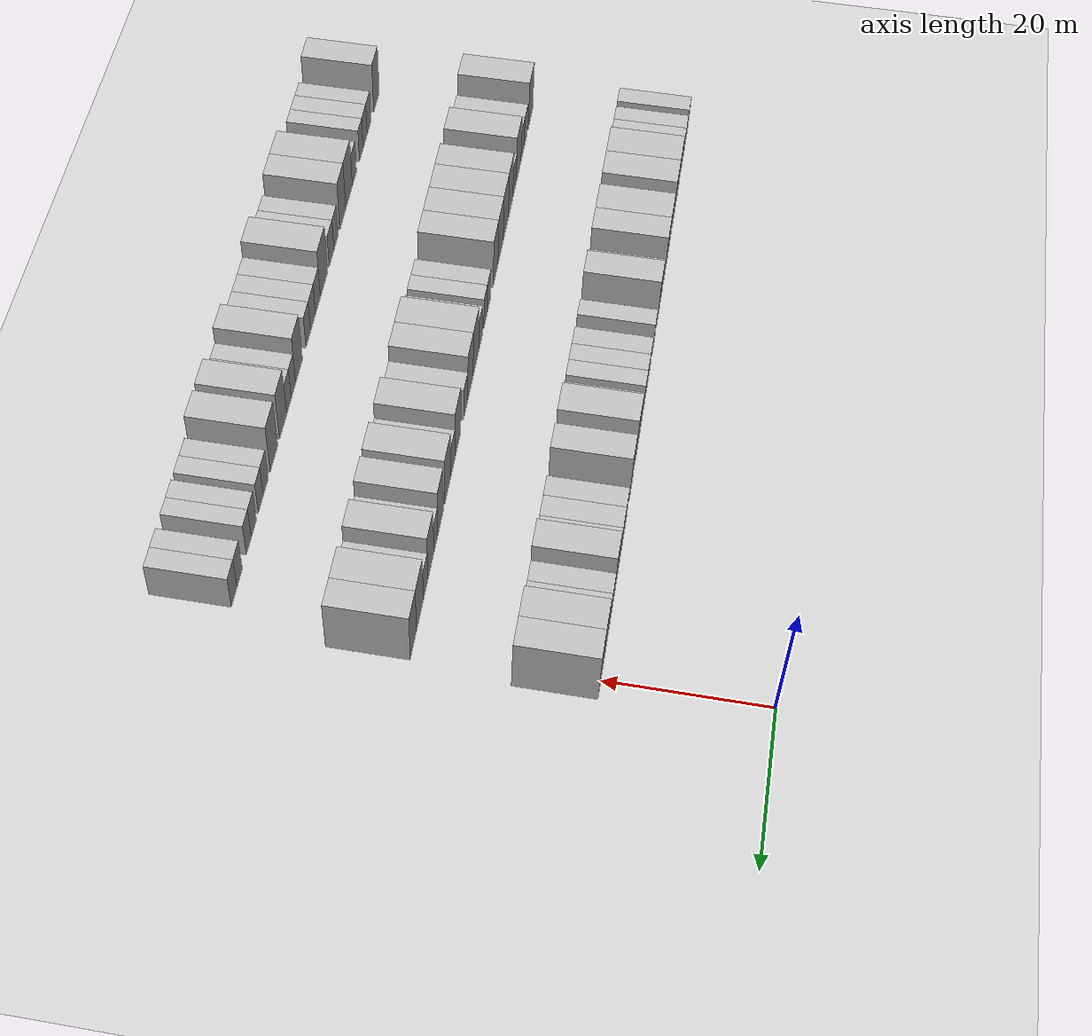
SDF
<sdf version="1.6">
 <world name="default">
  <include><name>ground_plane_1</name><uri>model://HANNAS_ground_plane</uri></include>
  <model name="building_75">
   <static>1</static>
   <pose>25.0000 -88.7041 0 0.000000 0.000000 0.000000</pose>
   <link name="link">
    <pose>0 0 3.00 0 0 0</pose>
    <collision name="collision"><geometry><box><size>10.0000 2.6441 6.0000</size></box></geometry></collision>
    <visual name="visual">
     <cast_shadows>0</cast_shadows>
     <geometry><box><size>10.0000 2.6441 6.0000</size></box></geometry>
     <material>
      <script>
       <uri>model://HANNAS_wall/materials/scripts</uri>
       <uri>model://HANNAS_wall/materials/textures</uri>
       <name>vrc/HANNAS_wall</name>
      </script>
     </material>
    </visual>
   </link>
  </model>
  <model name="building_76">
   <static>1</static>
   <pose>25.0000 -85.1526 0 0.000000 0.000000 0.000000</pose>
   <link name="link">
    <pose>0 0 3.00 0 0 0</pose>
    <collision name="collision"><geometry><box><size>10.0000 2.4589 6.0000</size></box></geometry></collision>
    <visual name="visual">
     <cast_shadows>0</cast_shadows>
     <geometry><box><size>10.0000 2.4589 6.0000</size></box></geometry>
     <material>
      <script>
       <uri>model://HANNAS_wall/materials/scripts</uri>
       <uri>model://HANNAS_wall/materials/textures</uri>
       <name>vrc/HANNAS_wall</name>
      </script>
     </material>
    </visual>
   </link>
  </model>
  <model name="building_77">
   <static>1</static>
   <pose>25.0000 -82.6330 0 0.000000 0.000000 0.000000</pose>
   <link name="link">
    <pose>0 0 3.00 0 0 0</pose>
    <collision name="collision"><geometry><box><size>10.0000 2.5803 6.0000</size></box></geometry></collision>
    <visual name="visual">
     <cast_shadows>0</cast_shadows>
     <geometry><box><size>10.0000 2.5803 6.0000</size></box></geometry>
     <material>
      <script>
       <uri>model://HANNAS_wall/materials/scripts</uri>
       <uri>model://HANNAS_wall/materials/textures</uri>
       <name>vrc/HANNAS_wall</name>
      </script>
     </material>
    </visual>
   </link>
  </model>
  <model name="building_78">
   <static>1</static>
   <pose>25.0000 -77.0944 0 0.000000 0.000000 0.000000</pose>
   <link name="link">
    <pose>0 0 4.50 0 0 0</pose>
    <collision name="collision"><geometry><box><size>10.0000 4.4970 9.0000</size></box></geometry></collision>
    <visual name="visual">
     <cast_shadows>0</cast_shadows>
     <geometry><box><size>10.0000 4.4970 9.0000</size></box></geometry>
     <material>
      <script>
       <uri>model://HANNAS_wall/materials/scripts</uri>
       <uri>model://HANNAS_wall/materials/textures</uri>
       <name>vrc/HANNAS_wall</name>
      </script>
     </material>
    </visual>
   </link>
  </model>
  <model name="building_79">
   <static>1</static>
   <pose>25.0000 -72.7961 0 0.000000 0.000000 0.000000</pose>
   <link name="link">
    <pose>0 0 4.50 0 0 0</pose>
    <collision name="collision"><geometry><box><size>10.0000 4.0996 9.0000</size></box></geometry></collision>
    <visual name="visual">
     <cast_shadows>0</cast_shadows>
     <geometry><box><size>10.0000 4.0996 9.0000</size></box></geometry>
     <material>
      <script>
       <uri>model://HANNAS_wall/materials/scripts</uri>
       <uri>model://HANNAS_wall/materials/textures</uri>
       <name>vrc/HANNAS_wall</name>
      </script>
     </material>
    </visual>
   </link>
  </model>
  <model name="building_80">
   <static>1</static>
   <pose>25.0000 -66.5996 0 0.000000 0.000000 0.000000</pose>
   <link name="link">
    <pose>0 0 4.50 0 0 0</pose>
    <collision name="collision"><geometry><box><size>10.0000 4.2934 9.0000</size></box></geometry></collision>
    <visual name="visual">
     <cast_shadows>0</cast_shadows>
     <geometry><box><size>10.0000 4.2934 9.0000</size></box></geometry>
     <material>
      <script>
       <uri>model://HANNAS_wall/materials/scripts</uri>
       <uri>model://HANNAS_wall/materials/textures</uri>
       <name>vrc/HANNAS_wall</name>
      </script>
     </material>
    </visual>
   </link>
  </model>
  <model name="building_81">
   <static>1</static>
   <pose>25.0000 -62.6284 0 0.000000 0.000000 0.000000</pose>
   <link name="link">
    <pose>0 0 4.50 0 0 0</pose>
    <collision name="collision"><geometry><box><size>10.0000 3.6488 9.0000</size></box></geometry></collision>
    <visual name="visual">
     <cast_shadows>0</cast_shadows>
     <geometry><box><size>10.0000 3.6488 9.0000</size></box></geometry>
     <material>
      <script>
       <uri>model://HANNAS_wall/materials/scripts</uri>
       <uri>model://HANNAS_wall/materials/textures</uri>
       <name>vrc/HANNAS_wall</name>
      </script>
     </material>
    </visual>
   </link>
  </model>
  <model name="building_82">
   <static>1</static>
   <pose>25.0000 -58.3617 0 0.000000 0.000000 0.000000</pose>
   <link name="link">
    <pose>0 0 3.00 0 0 0</pose>
    <collision name="collision"><geometry><box><size>10.0000 2.8846 6.0000</size></box></geometry></collision>
    <visual name="visual">
     <cast_shadows>0</cast_shadows>
     <geometry><box><size>10.0000 2.8846 6.0000</size></box></geometry>
     <material>
      <script>
       <uri>model://HANNAS_wall/materials/scripts</uri>
       <uri>model://HANNAS_wall/materials/textures</uri>
       <name>vrc/HANNAS_wall</name>
      </script>
     </material>
    </visual>
   </link>
  </model>
  <model name="building_83">
   <static>1</static>
   <pose>25.0000 -55.0521 0 0.000000 0.000000 0.000000</pose>
   <link name="link">
    <pose>0 0 4.50 0 0 0</pose>
    <collision name="collision"><geometry><box><size>10.0000 3.7347 9.0000</size></box></geometry></collision>
    <visual name="visual">
     <cast_shadows>0</cast_shadows>
     <geometry><box><size>10.0000 3.7347 9.0000</size></box></geometry>
     <material>
      <script>
       <uri>model://HANNAS_wall/materials/scripts</uri>
       <uri>model://HANNAS_wall/materials/textures</uri>
       <name>vrc/HANNAS_wall</name>
      </script>
     </material>
    </visual>
   </link>
  </model>
  <model name="building_84">
   <static>1</static>
   <pose>25.0000 -49.8856 0 0.000000 0.000000 0.000000</pose>
   <link name="link">
    <pose>0 0 3.00 0 0 0</pose>
    <collision name="collision"><geometry><box><size>10.0000 2.5983 6.0000</size></box></geometry></collision>
    <visual name="visual">
     <cast_shadows>0</cast_shadows>
     <geometry><box><size>10.0000 2.5983 6.0000</size></box></geometry>
     <material>
      <script>
       <uri>model://HANNAS_wall/materials/scripts</uri>
       <uri>model://HANNAS_wall/materials/textures</uri>
       <name>vrc/HANNAS_wall</name>
      </script>
     </material>
    </visual>
   </link>
  </model>
  <model name="building_85">
   <static>1</static>
   <pose>25.0000 -45.2124 0 0.000000 0.000000 0.000000</pose>
   <link name="link">
    <pose>0 0 3.00 0 0 0</pose>
    <collision name="collision"><geometry><box><size>10.0000 2.7481 6.0000</size></box></geometry></collision>
    <visual name="visual">
     <cast_shadows>0</cast_shadows>
     <geometry><box><size>10.0000 2.7481 6.0000</size></box></geometry>
     <material>
      <script>
       <uri>model://HANNAS_wall/materials/scripts</uri>
       <uri>model://HANNAS_wall/materials/textures</uri>
       <name>vrc/HANNAS_wall</name>
      </script>
     </material>
    </visual>
   </link>
  </model>
  <model name="building_86">
   <static>1</static>
   <pose>25.0000 -42.5337 0 0.000000 0.000000 0.000000</pose>
   <link name="link">
    <pose>0 0 3.00 0 0 0</pose>
    <collision name="collision"><geometry><box><size>10.0000 2.6094 6.0000</size></box></geometry></collision>
    <visual name="visual">
     <cast_shadows>0</cast_shadows>
     <geometry><box><size>10.0000 2.6094 6.0000</size></box></geometry>
     <material>
      <script>
       <uri>model://HANNAS_wall/materials/scripts</uri>
       <uri>model://HANNAS_wall/materials/textures</uri>
       <name>vrc/HANNAS_wall</name>
      </script>
     </material>
    </visual>
   </link>
  </model>
  <model name="building_87">
   <static>1</static>
   <pose>25.0000 -39.9571 0 0.000000 0.000000 0.000000</pose>
   <link name="link">
    <pose>0 0 3.00 0 0 0</pose>
    <collision name="collision"><geometry><box><size>10.0000 2.5437 6.0000</size></box></geometry></collision>
    <visual name="visual">
     <cast_shadows>0</cast_shadows>
     <geometry><box><size>10.0000 2.5437 6.0000</size></box></geometry>
     <material>
      <script>
       <uri>model://HANNAS_wall/materials/scripts</uri>
       <uri>model://HANNAS_wall/materials/textures</uri>
       <name>vrc/HANNAS_wall</name>
      </script>
     </material>
    </visual>
   </link>
  </model>
  <model name="building_88">
   <static>1</static>
   <pose>25.0000 -36.4156 0 0.000000 0.000000 0.000000</pose>
   <link name="link">
    <pose>0 0 3.00 0 0 0</pose>
    <collision name="collision"><geometry><box><size>10.0000 2.5394 6.0000</size></box></geometry></collision>
    <visual name="visual">
     <cast_shadows>0</cast_shadows>
     <geometry><box><size>10.0000 2.5394 6.0000</size></box></geometry>
     <material>
      <script>
       <uri>model://HANNAS_wall/materials/scripts</uri>
       <uri>model://HANNAS_wall/materials/textures</uri>
       <name>vrc/HANNAS_wall</name>
      </script>
     </material>
    </visual>
   </link>
  </model>
  <model name="building_89">
   <static>1</static>
   <pose>25.0000 -33.0353 0 0.000000 0.000000 0.000000</pose>
   <link name="link">
    <pose>0 0 4.50 0 0 0</pose>
    <collision name="collision"><geometry><box><size>10.0000 4.2212 9.0000</size></box></geometry></collision>
    <visual name="visual">
     <cast_shadows>0</cast_shadows>
     <geometry><box><size>10.0000 4.2212 9.0000</size></box></geometry>
     <material>
      <script>
       <uri>model://HANNAS_wall/materials/scripts</uri>
       <uri>model://HANNAS_wall/materials/textures</uri>
       <name>vrc/HANNAS_wall</name>
      </script>
     </material>
    </visual>
   </link>
  </model>
  <model name="building_90">
   <static>1</static>
   <pose>25.0000 -27.0696 0 0.000000 0.000000 0.000000</pose>
   <link name="link">
    <pose>0 0 4.50 0 0 0</pose>
    <collision name="collision"><geometry><box><size>10.0000 3.7103 9.0000</size></box></geometry></collision>
    <visual name="visual">
     <cast_shadows>0</cast_shadows>
     <geometry><box><size>10.0000 3.7103 9.0000</size></box></geometry>
     <material>
      <script>
       <uri>model://HANNAS_wall/materials/scripts</uri>
       <uri>model://HANNAS_wall/materials/textures</uri>
       <name>vrc/HANNAS_wall</name>
      </script>
     </material>
    </visual>
   </link>
  </model>
  <model name="building_91">
   <static>1</static>
   <pose>25.0000 -21.7910 0 0.000000 0.000000 0.000000</pose>
   <link name="link">
    <pose>0 0 3.00 0 0 0</pose>
    <collision name="collision"><geometry><box><size>10.0000 2.8470 6.0000</size></box></geometry></collision>
    <visual name="visual">
     <cast_shadows>0</cast_shadows>
     <geometry><box><size>10.0000 2.8470 6.0000</size></box></geometry>
     <material>
      <script>
       <uri>model://HANNAS_wall/materials/scripts</uri>
       <uri>model://HANNAS_wall/materials/textures</uri>
       <name>vrc/HANNAS_wall</name>
      </script>
     </material>
    </visual>
   </link>
  </model>
  <model name="building_92">
   <static>1</static>
   <pose>25.0000 -18.8812 0 0.000000 0.000000 0.000000</pose>
   <link name="link">
    <pose>0 0 3.00 0 0 0</pose>
    <collision name="collision"><geometry><box><size>10.0000 2.9727 6.0000</size></box></geometry></collision>
    <visual name="visual">
     <cast_shadows>0</cast_shadows>
     <geometry><box><size>10.0000 2.9727 6.0000</size></box></geometry>
     <material>
      <script>
       <uri>model://HANNAS_wall/materials/scripts</uri>
       <uri>model://HANNAS_wall/materials/textures</uri>
       <name>vrc/HANNAS_wall</name>
      </script>
     </material>
    </visual>
   </link>
  </model>
  <model name="building_93">
   <static>1</static>
   <pose>25.0000 -16.1226 0 0.000000 0.000000 0.000000</pose>
   <link name="link">
    <pose>0 0 3.00 0 0 0</pose>
    <collision name="collision"><geometry><box><size>10.0000 2.5445 6.0000</size></box></geometry></collision>
    <visual name="visual">
     <cast_shadows>0</cast_shadows>
     <geometry><box><size>10.0000 2.5445 6.0000</size></box></geometry>
     <material>
      <script>
       <uri>model://HANNAS_wall/materials/scripts</uri>
       <uri>model://HANNAS_wall/materials/textures</uri>
       <name>vrc/HANNAS_wall</name>
      </script>
     </material>
    </visual>
   </link>
  </model>
  <model name="building_94">
   <static>1</static>
   <pose>25.0000 -12.9218 0 0.000000 0.000000 0.000000</pose>
   <link name="link">
    <pose>0 0 4.50 0 0 0</pose>
    <collision name="collision"><geometry><box><size>10.0000 3.8570 9.0000</size></box></geometry></collision>
    <visual name="visual">
     <cast_shadows>0</cast_shadows>
     <geometry><box><size>10.0000 3.8570 9.0000</size></box></geometry>
     <material>
      <script>
       <uri>model://HANNAS_wall/materials/scripts</uri>
       <uri>model://HANNAS_wall/materials/textures</uri>
       <name>vrc/HANNAS_wall</name>
      </script>
     </material>
    </visual>
   </link>
  </model>
  <model name="building_95">
   <static>1</static>
   <pose>25.0000 -9.5925 0 0.000000 0.000000 0.000000</pose>
   <link name="link">
    <pose>0 0 3.00 0 0 0</pose>
    <collision name="collision"><geometry><box><size>10.0000 2.8017 6.0000</size></box></geometry></collision>
    <visual name="visual">
     <cast_shadows>0</cast_shadows>
     <geometry><box><size>10.0000 2.8017 6.0000</size></box></geometry>
     <material>
      <script>
       <uri>model://HANNAS_wall/materials/scripts</uri>
       <uri>model://HANNAS_wall/materials/textures</uri>
       <name>vrc/HANNAS_wall</name>
      </script>
     </material>
    </visual>
   </link>
  </model>
  <model name="building_96">
   <static>1</static>
   <pose>25.0000 -6.8809 0 0.000000 0.000000 0.000000</pose>
   <link name="link">
    <pose>0 0 3.00 0 0 0</pose>
    <collision name="collision"><geometry><box><size>10.0000 2.6215 6.0000</size></box></geometry></collision>
    <visual name="visual">
     <cast_shadows>0</cast_shadows>
     <geometry><box><size>10.0000 2.6215 6.0000</size></box></geometry>
     <material>
      <script>
       <uri>model://HANNAS_wall/materials/scripts</uri>
       <uri>model://HANNAS_wall/materials/textures</uri>
       <name>vrc/HANNAS_wall</name>
      </script>
     </material>
    </visual>
   </link>
  </model>
  <model name="building_97">
   <static>1</static>
   <pose>25.0000 -3.5418 0 0.000000 0.000000 0.000000</pose>
   <link name="link">
    <pose>0 0 4.50 0 0 0</pose>
    <collision name="collision"><geometry><box><size>10.0000 4.0567 9.0000</size></box></geometry></collision>
    <visual name="visual">
     <cast_shadows>0</cast_shadows>
     <geometry><box><size>10.0000 4.0567 9.0000</size></box></geometry>
     <material>
      <script>
       <uri>model://HANNAS_wall/materials/scripts</uri>
       <uri>model://HANNAS_wall/materials/textures</uri>
       <name>vrc/HANNAS_wall</name>
      </script>
     </material>
    </visual>
   </link>
  </model>
  <model name="building_98">
   <static>1</static>
   <pose>25.0000 0.4291 0 0.000000 0.000000 0.000000</pose>
   <link name="link">
    <pose>0 0 4.50 0 0 0</pose>
    <collision name="collision"><geometry><box><size>10.0000 3.8851 9.0000</size></box></geometry></collision>
    <visual name="visual">
     <cast_shadows>0</cast_shadows>
     <geometry><box><size>10.0000 3.8851 9.0000</size></box></geometry>
     <material>
      <script>
       <uri>model://HANNAS_wall/materials/scripts</uri>
       <uri>model://HANNAS_wall/materials/textures</uri>
       <name>vrc/HANNAS_wall</name>
      </script>
     </material>
    </visual>
   </link>
  </model>
  <model name="building_267">
   <static>1</static>
   <pose>47.0000 -87.6723 0 0.000000 0.000000 0.000000</pose>
   <link name="link">
    <pose>0 0 4.50 0 0 0</pose>
    <collision name="collision"><geometry><box><size>10.0000 4.1433 9.0000</size></box></geometry></collision>
    <visual name="visual">
     <cast_shadows>0</cast_shadows>
     <geometry><box><size>10.0000 4.1433 9.0000</size></box></geometry>
     <material>
      <script>
       <uri>model://HANNAS_wall/materials/scripts</uri>
       <uri>model://HANNAS_wall/materials/textures</uri>
       <name>vrc/HANNAS_wall</name>
      </script>
     </material>
    </visual>
   </link>
  </model>
  <model name="building_268">
   <static>1</static>
   <pose>47.0000 -83.2576 0 0.000000 0.000000 0.000000</pose>
   <link name="link">
    <pose>0 0 3.00 0 0 0</pose>
    <collision name="collision"><geometry><box><size>10.0000 2.6862 6.0000</size></box></geometry></collision>
    <visual name="visual">
     <cast_shadows>0</cast_shadows>
     <geometry><box><size>10.0000 2.6862 6.0000</size></box></geometry>
     <material>
      <script>
       <uri>model://HANNAS_wall/materials/scripts</uri>
       <uri>model://HANNAS_wall/materials/textures</uri>
       <name>vrc/HANNAS_wall</name>
      </script>
     </material>
    </visual>
   </link>
  </model>
  <model name="building_269">
   <static>1</static>
   <pose>47.0000 -80.5300 0 0.000000 0.000000 0.000000</pose>
   <link name="link">
    <pose>0 0 3.00 0 0 0</pose>
    <collision name="collision"><geometry><box><size>10.0000 2.7689 6.0000</size></box></geometry></collision>
    <visual name="visual">
     <cast_shadows>0</cast_shadows>
     <geometry><box><size>10.0000 2.7689 6.0000</size></box></geometry>
     <material>
      <script>
       <uri>model://HANNAS_wall/materials/scripts</uri>
       <uri>model://HANNAS_wall/materials/textures</uri>
       <name>vrc/HANNAS_wall</name>
      </script>
     </material>
    </visual>
   </link>
  </model>
  <model name="building_270">
   <static>1</static>
   <pose>47.0000 -77.0597 0 0.000000 0.000000 0.000000</pose>
   <link name="link">
    <pose>0 0 4.50 0 0 0</pose>
    <collision name="collision"><geometry><box><size>10.0000 4.1718 9.0000</size></box></geometry></collision>
    <visual name="visual">
     <cast_shadows>0</cast_shadows>
     <geometry><box><size>10.0000 4.1718 9.0000</size></box></geometry>
     <material>
      <script>
       <uri>model://HANNAS_wall/materials/scripts</uri>
       <uri>model://HANNAS_wall/materials/textures</uri>
       <name>vrc/HANNAS_wall</name>
      </script>
     </material>
    </visual>
   </link>
  </model>
  <model name="building_271">
   <static>1</static>
   <pose>47.0000 -73.5952 0 0.000000 0.000000 0.000000</pose>
   <link name="link">
    <pose>0 0 3.00 0 0 0</pose>
    <collision name="collision"><geometry><box><size>10.0000 2.7572 6.0000</size></box></geometry></collision>
    <visual name="visual">
     <cast_shadows>0</cast_shadows>
     <geometry><box><size>10.0000 2.7572 6.0000</size></box></geometry>
     <material>
      <script>
       <uri>model://HANNAS_wall/materials/scripts</uri>
       <uri>model://HANNAS_wall/materials/textures</uri>
       <name>vrc/HANNAS_wall</name>
      </script>
     </material>
    </visual>
   </link>
  </model>
  <model name="building_272">
   <static>1</static>
   <pose>47.0000 -70.3222 0 0.000000 0.000000 0.000000</pose>
   <link name="link">
    <pose>0 0 4.50 0 0 0</pose>
    <collision name="collision"><geometry><box><size>10.0000 3.7888 9.0000</size></box></geometry></collision>
    <visual name="visual">
     <cast_shadows>0</cast_shadows>
     <geometry><box><size>10.0000 3.7888 9.0000</size></box></geometry>
     <material>
      <script>
       <uri>model://HANNAS_wall/materials/scripts</uri>
       <uri>model://HANNAS_wall/materials/textures</uri>
       <name>vrc/HANNAS_wall</name>
      </script>
     </material>
    </visual>
   </link>
  </model>
  <model name="building_273">
   <static>1</static>
   <pose>47.0000 -66.3033 0 0.000000 0.000000 0.000000</pose>
   <link name="link">
    <pose>0 0 4.50 0 0 0</pose>
    <collision name="collision"><geometry><box><size>10.0000 4.2489 9.0000</size></box></geometry></collision>
    <visual name="visual">
     <cast_shadows>0</cast_shadows>
     <geometry><box><size>10.0000 4.2489 9.0000</size></box></geometry>
     <material>
      <script>
       <uri>model://HANNAS_wall/materials/scripts</uri>
       <uri>model://HANNAS_wall/materials/textures</uri>
       <name>vrc/HANNAS_wall</name>
      </script>
     </material>
    </visual>
   </link>
  </model>
  <model name="building_274">
   <static>1</static>
   <pose>47.0000 -62.0894 0 0.000000 0.000000 0.000000</pose>
   <link name="link">
    <pose>0 0 4.50 0 0 0</pose>
    <collision name="collision"><geometry><box><size>10.0000 4.1789 9.0000</size></box></geometry></collision>
    <visual name="visual">
     <cast_shadows>0</cast_shadows>
     <geometry><box><size>10.0000 4.1789 9.0000</size></box></geometry>
     <material>
      <script>
       <uri>model://HANNAS_wall/materials/scripts</uri>
       <uri>model://HANNAS_wall/materials/textures</uri>
       <name>vrc/HANNAS_wall</name>
      </script>
     </material>
    </visual>
   </link>
  </model>
  <model name="building_275">
   <static>1</static>
   <pose>47.0000 -58.0496 0 0.000000 0.000000 0.000000</pose>
   <link name="link">
    <pose>0 0 4.50 0 0 0</pose>
    <collision name="collision"><geometry><box><size>10.0000 3.9008 9.0000</size></box></geometry></collision>
    <visual name="visual">
     <cast_shadows>0</cast_shadows>
     <geometry><box><size>10.0000 3.9008 9.0000</size></box></geometry>
     <material>
      <script>
       <uri>model://HANNAS_wall/materials/scripts</uri>
       <uri>model://HANNAS_wall/materials/textures</uri>
       <name>vrc/HANNAS_wall</name>
      </script>
     </material>
    </visual>
   </link>
  </model>
  <model name="building_276">
   <static>1</static>
   <pose>47.0000 -52.7423 0 0.000000 0.000000 0.000000</pose>
   <link name="link">
    <pose>0 0 3.00 0 0 0</pose>
    <collision name="collision"><geometry><box><size>10.0000 2.7137 6.0000</size></box></geometry></collision>
    <visual name="visual">
     <cast_shadows>0</cast_shadows>
     <geometry><box><size>10.0000 2.7137 6.0000</size></box></geometry>
     <material>
      <script>
       <uri>model://HANNAS_wall/materials/scripts</uri>
       <uri>model://HANNAS_wall/materials/textures</uri>
       <name>vrc/HANNAS_wall</name>
      </script>
     </material>
    </visual>
   </link>
  </model>
  <model name="building_277">
   <static>1</static>
   <pose>47.0000 -50.1216 0 0.000000 0.000000 0.000000</pose>
   <link name="link">
    <pose>0 0 3.00 0 0 0</pose>
    <collision name="collision"><geometry><box><size>10.0000 2.5278 6.0000</size></box></geometry></collision>
    <visual name="visual">
     <cast_shadows>0</cast_shadows>
     <geometry><box><size>10.0000 2.5278 6.0000</size></box></geometry>
     <material>
      <script>
       <uri>model://HANNAS_wall/materials/scripts</uri>
       <uri>model://HANNAS_wall/materials/textures</uri>
       <name>vrc/HANNAS_wall</name>
      </script>
     </material>
    </visual>
   </link>
  </model>
  <model name="building_278">
   <static>1</static>
   <pose>47.0000 -46.4789 0 0.000000 0.000000 0.000000</pose>
   <link name="link">
    <pose>0 0 3.00 0 0 0</pose>
    <collision name="collision"><geometry><box><size>10.0000 2.7578 6.0000</size></box></geometry></collision>
    <visual name="visual">
     <cast_shadows>0</cast_shadows>
     <geometry><box><size>10.0000 2.7578 6.0000</size></box></geometry>
     <material>
      <script>
       <uri>model://HANNAS_wall/materials/scripts</uri>
       <uri>model://HANNAS_wall/materials/textures</uri>
       <name>vrc/HANNAS_wall</name>
      </script>
     </material>
    </visual>
   </link>
  </model>
  <model name="building_279">
   <static>1</static>
   <pose>47.0000 -42.9915 0 0.000000 0.000000 0.000000</pose>
   <link name="link">
    <pose>0 0 4.50 0 0 0</pose>
    <collision name="collision"><geometry><box><size>10.0000 4.2170 9.0000</size></box></geometry></collision>
    <visual name="visual">
     <cast_shadows>0</cast_shadows>
     <geometry><box><size>10.0000 4.2170 9.0000</size></box></geometry>
     <material>
      <script>
       <uri>model://HANNAS_wall/materials/scripts</uri>
       <uri>model://HANNAS_wall/materials/textures</uri>
       <name>vrc/HANNAS_wall</name>
      </script>
     </material>
    </visual>
   </link>
  </model>
  <model name="building_280">
   <static>1</static>
   <pose>47.0000 -38.9167 0 0.000000 0.000000 0.000000</pose>
   <link name="link">
    <pose>0 0 4.50 0 0 0</pose>
    <collision name="collision"><geometry><box><size>10.0000 3.9326 9.0000</size></box></geometry></collision>
    <visual name="visual">
     <cast_shadows>0</cast_shadows>
     <geometry><box><size>10.0000 3.9326 9.0000</size></box></geometry>
     <material>
      <script>
       <uri>model://HANNAS_wall/materials/scripts</uri>
       <uri>model://HANNAS_wall/materials/textures</uri>
       <name>vrc/HANNAS_wall</name>
      </script>
     </material>
    </visual>
   </link>
  </model>
  <model name="building_281">
   <static>1</static>
   <pose>47.0000 -35.4870 0 0.000000 0.000000 0.000000</pose>
   <link name="link">
    <pose>0 0 3.00 0 0 0</pose>
    <collision name="collision"><geometry><box><size>10.0000 2.9268 6.0000</size></box></geometry></collision>
    <visual name="visual">
     <cast_shadows>0</cast_shadows>
     <geometry><box><size>10.0000 2.9268 6.0000</size></box></geometry>
     <material>
      <script>
       <uri>model://HANNAS_wall/materials/scripts</uri>
       <uri>model://HANNAS_wall/materials/textures</uri>
       <name>vrc/HANNAS_wall</name>
      </script>
     </material>
    </visual>
   </link>
  </model>
  <model name="building_282">
   <static>1</static>
   <pose>47.0000 -29.9730 0 0.000000 0.000000 0.000000</pose>
   <link name="link">
    <pose>0 0 4.50 0 0 0</pose>
    <collision name="collision"><geometry><box><size>10.0000 4.1010 9.0000</size></box></geometry></collision>
    <visual name="visual">
     <cast_shadows>0</cast_shadows>
     <geometry><box><size>10.0000 4.1010 9.0000</size></box></geometry>
     <material>
      <script>
       <uri>model://HANNAS_wall/materials/scripts</uri>
       <uri>model://HANNAS_wall/materials/textures</uri>
       <name>vrc/HANNAS_wall</name>
      </script>
     </material>
    </visual>
   </link>
  </model>
  <model name="building_283">
   <static>1</static>
   <pose>47.0000 -26.4834 0 0.000000 0.000000 0.000000</pose>
   <link name="link">
    <pose>0 0 3.00 0 0 0</pose>
    <collision name="collision"><geometry><box><size>10.0000 2.8782 6.0000</size></box></geometry></collision>
    <visual name="visual">
     <cast_shadows>0</cast_shadows>
     <geometry><box><size>10.0000 2.8782 6.0000</size></box></geometry>
     <material>
      <script>
       <uri>model://HANNAS_wall/materials/scripts</uri>
       <uri>model://HANNAS_wall/materials/textures</uri>
       <name>vrc/HANNAS_wall</name>
      </script>
     </material>
    </visual>
   </link>
  </model>
  <model name="building_284">
   <static>1</static>
   <pose>47.0000 -22.9939 0 0.000000 0.000000 0.000000</pose>
   <link name="link">
    <pose>0 0 4.50 0 0 0</pose>
    <collision name="collision"><geometry><box><size>10.0000 4.1009 9.0000</size></box></geometry></collision>
    <visual name="visual">
     <cast_shadows>0</cast_shadows>
     <geometry><box><size>10.0000 4.1009 9.0000</size></box></geometry>
     <material>
      <script>
       <uri>model://HANNAS_wall/materials/scripts</uri>
       <uri>model://HANNAS_wall/materials/textures</uri>
       <name>vrc/HANNAS_wall</name>
      </script>
     </material>
    </visual>
   </link>
  </model>
  <model name="building_285">
   <static>1</static>
   <pose>47.0000 -18.0878 0 0.000000 0.000000 0.000000</pose>
   <link name="link">
    <pose>0 0 4.50 0 0 0</pose>
    <collision name="collision"><geometry><box><size>10.0000 3.7114 9.0000</size></box></geometry></collision>
    <visual name="visual">
     <cast_shadows>0</cast_shadows>
     <geometry><box><size>10.0000 3.7114 9.0000</size></box></geometry>
     <material>
      <script>
       <uri>model://HANNAS_wall/materials/scripts</uri>
       <uri>model://HANNAS_wall/materials/textures</uri>
       <name>vrc/HANNAS_wall</name>
      </script>
     </material>
    </visual>
   </link>
  </model>
  <model name="building_286">
   <static>1</static>
   <pose>47.0000 -14.9373 0 0.000000 0.000000 0.000000</pose>
   <link name="link">
    <pose>0 0 3.00 0 0 0</pose>
    <collision name="collision"><geometry><box><size>10.0000 2.5896 6.0000</size></box></geometry></collision>
    <visual name="visual">
     <cast_shadows>0</cast_shadows>
     <geometry><box><size>10.0000 2.5896 6.0000</size></box></geometry>
     <material>
      <script>
       <uri>model://HANNAS_wall/materials/scripts</uri>
       <uri>model://HANNAS_wall/materials/textures</uri>
       <name>vrc/HANNAS_wall</name>
      </script>
     </material>
    </visual>
   </link>
  </model>
  <model name="building_287">
   <static>1</static>
   <pose>47.0000 -11.7111 0 0.000000 0.000000 0.000000</pose>
   <link name="link">
    <pose>0 0 4.50 0 0 0</pose>
    <collision name="collision"><geometry><box><size>10.0000 3.8627 9.0000</size></box></geometry></collision>
    <visual name="visual">
     <cast_shadows>0</cast_shadows>
     <geometry><box><size>10.0000 3.8627 9.0000</size></box></geometry>
     <material>
      <script>
       <uri>model://HANNAS_wall/materials/scripts</uri>
       <uri>model://HANNAS_wall/materials/textures</uri>
       <name>vrc/HANNAS_wall</name>
      </script>
     </material>
    </visual>
   </link>
  </model>
  <model name="building_288">
   <static>1</static>
   <pose>47.0000 -8.3710 0 0.000000 0.000000 0.000000</pose>
   <link name="link">
    <pose>0 0 3.00 0 0 0</pose>
    <collision name="collision"><geometry><box><size>10.0000 2.8175 6.0000</size></box></geometry></collision>
    <visual name="visual">
     <cast_shadows>0</cast_shadows>
     <geometry><box><size>10.0000 2.8175 6.0000</size></box></geometry>
     <material>
      <script>
       <uri>model://HANNAS_wall/materials/scripts</uri>
       <uri>model://HANNAS_wall/materials/textures</uri>
       <name>vrc/HANNAS_wall</name>
      </script>
     </material>
    </visual>
   </link>
  </model>
  <model name="building_289">
   <static>1</static>
   <pose>47.0000 -4.8083 0 0.000000 0.000000 0.000000</pose>
   <link name="link">
    <pose>0 0 4.50 0 0 0</pose>
    <collision name="collision"><geometry><box><size>10.0000 4.3078 9.0000</size></box></geometry></collision>
    <visual name="visual">
     <cast_shadows>0</cast_shadows>
     <geometry><box><size>10.0000 4.3078 9.0000</size></box></geometry>
     <material>
      <script>
       <uri>model://HANNAS_wall/materials/scripts</uri>
       <uri>model://HANNAS_wall/materials/textures</uri>
       <name>vrc/HANNAS_wall</name>
      </script>
     </material>
    </visual>
   </link>
  </model>
  <model name="building_290">
   <static>1</static>
   <pose>47.0000 -0.7795 0 0.000000 0.000000 0.000000</pose>
   <link name="link">
    <pose>0 0 4.50 0 0 0</pose>
    <collision name="collision"><geometry><box><size>10.0000 3.7499 9.0000</size></box></geometry></collision>
    <visual name="visual">
     <cast_shadows>0</cast_shadows>
     <geometry><box><size>10.0000 3.7499 9.0000</size></box></geometry>
     <material>
      <script>
       <uri>model://HANNAS_wall/materials/scripts</uri>
       <uri>model://HANNAS_wall/materials/textures</uri>
       <name>vrc/HANNAS_wall</name>
      </script>
     </material>
    </visual>
   </link>
  </model>
  <model name="building_455">
   <static>1</static>
   <pose>69.0000 -87.1596 0 0.000000 0.000000 0.000000</pose>
   <link name="link">
    <pose>0 0 4.50 0 0 0</pose>
    <collision name="collision"><geometry><box><size>10.0000 3.9072 9.0000</size></box></geometry></collision>
    <visual name="visual">
     <cast_shadows>0</cast_shadows>
     <geometry><box><size>10.0000 3.9072 9.0000</size></box></geometry>
     <material>
      <script>
       <uri>model://HANNAS_wall/materials/scripts</uri>
       <uri>model://HANNAS_wall/materials/textures</uri>
       <name>vrc/HANNAS_wall</name>
      </script>
     </material>
    </visual>
   </link>
  </model>
  <model name="building_456">
   <static>1</static>
   <pose>69.0000 -81.9155 0 0.000000 0.000000 0.000000</pose>
   <link name="link">
    <pose>0 0 3.00 0 0 0</pose>
    <collision name="collision"><geometry><box><size>10.0000 2.5811 6.0000</size></box></geometry></collision>
    <visual name="visual">
     <cast_shadows>0</cast_shadows>
     <geometry><box><size>10.0000 2.5811 6.0000</size></box></geometry>
     <material>
      <script>
       <uri>model://HANNAS_wall/materials/scripts</uri>
       <uri>model://HANNAS_wall/materials/textures</uri>
       <name>vrc/HANNAS_wall</name>
      </script>
     </material>
    </visual>
   </link>
  </model>
  <model name="building_457">
   <static>1</static>
   <pose>69.0000 -79.2363 0 0.000000 0.000000 0.000000</pose>
   <link name="link">
    <pose>0 0 3.00 0 0 0</pose>
    <collision name="collision"><geometry><box><size>10.0000 2.7773 6.0000</size></box></geometry></collision>
    <visual name="visual">
     <cast_shadows>0</cast_shadows>
     <geometry><box><size>10.0000 2.7773 6.0000</size></box></geometry>
     <material>
      <script>
       <uri>model://HANNAS_wall/materials/scripts</uri>
       <uri>model://HANNAS_wall/materials/textures</uri>
       <name>vrc/HANNAS_wall</name>
      </script>
     </material>
    </visual>
   </link>
  </model>
  <model name="building_458">
   <static>1</static>
   <pose>69.0000 -76.6186 0 0.000000 0.000000 0.000000</pose>
   <link name="link">
    <pose>0 0 3.00 0 0 0</pose>
    <collision name="collision"><geometry><box><size>10.0000 2.4581 6.0000</size></box></geometry></collision>
    <visual name="visual">
     <cast_shadows>0</cast_shadows>
     <geometry><box><size>10.0000 2.4581 6.0000</size></box></geometry>
     <material>
      <script>
       <uri>model://HANNAS_wall/materials/scripts</uri>
       <uri>model://HANNAS_wall/materials/textures</uri>
       <name>vrc/HANNAS_wall</name>
      </script>
     </material>
    </visual>
   </link>
  </model>
  <model name="building_459">
   <static>1</static>
   <pose>69.0000 -72.0159 0 0.000000 0.000000 0.000000</pose>
   <link name="link">
    <pose>0 0 3.00 0 0 0</pose>
    <collision name="collision"><geometry><box><size>10.0000 2.7472 6.0000</size></box></geometry></collision>
    <visual name="visual">
     <cast_shadows>0</cast_shadows>
     <geometry><box><size>10.0000 2.7472 6.0000</size></box></geometry>
     <material>
      <script>
       <uri>model://HANNAS_wall/materials/scripts</uri>
       <uri>model://HANNAS_wall/materials/textures</uri>
       <name>vrc/HANNAS_wall</name>
      </script>
     </material>
    </visual>
   </link>
  </model>
  <model name="building_460">
   <static>1</static>
   <pose>69.0000 -68.4813 0 0.000000 0.000000 0.000000</pose>
   <link name="link">
    <pose>0 0 4.50 0 0 0</pose>
    <collision name="collision"><geometry><box><size>10.0000 4.3221 9.0000</size></box></geometry></collision>
    <visual name="visual">
     <cast_shadows>0</cast_shadows>
     <geometry><box><size>10.0000 4.3221 9.0000</size></box></geometry>
     <material>
      <script>
       <uri>model://HANNAS_wall/materials/scripts</uri>
       <uri>model://HANNAS_wall/materials/textures</uri>
       <name>vrc/HANNAS_wall</name>
      </script>
     </material>
    </visual>
   </link>
  </model>
  <model name="building_461">
   <static>1</static>
   <pose>69.0000 -64.4030 0 0.000000 0.000000 0.000000</pose>
   <link name="link">
    <pose>0 0 4.50 0 0 0</pose>
    <collision name="collision"><geometry><box><size>10.0000 3.8345 9.0000</size></box></geometry></collision>
    <visual name="visual">
     <cast_shadows>0</cast_shadows>
     <geometry><box><size>10.0000 3.8345 9.0000</size></box></geometry>
     <material>
      <script>
       <uri>model://HANNAS_wall/materials/scripts</uri>
       <uri>model://HANNAS_wall/materials/textures</uri>
       <name>vrc/HANNAS_wall</name>
      </script>
     </material>
    </visual>
   </link>
  </model>
  <model name="building_462">
   <static>1</static>
   <pose>69.0000 -60.1333 0 0.000000 0.000000 0.000000</pose>
   <link name="link">
    <pose>0 0 3.00 0 0 0</pose>
    <collision name="collision"><geometry><box><size>10.0000 2.7047 6.0000</size></box></geometry></collision>
    <visual name="visual">
     <cast_shadows>0</cast_shadows>
     <geometry><box><size>10.0000 2.7047 6.0000</size></box></geometry>
     <material>
      <script>
       <uri>model://HANNAS_wall/materials/scripts</uri>
       <uri>model://HANNAS_wall/materials/textures</uri>
       <name>vrc/HANNAS_wall</name>
      </script>
     </material>
    </visual>
   </link>
  </model>
  <model name="building_463">
   <static>1</static>
   <pose>69.0000 -57.3131 0 0.000000 0.000000 0.000000</pose>
   <link name="link">
    <pose>0 0 3.00 0 0 0</pose>
    <collision name="collision"><geometry><box><size>10.0000 2.9358 6.0000</size></box></geometry></collision>
    <visual name="visual">
     <cast_shadows>0</cast_shadows>
     <geometry><box><size>10.0000 2.9358 6.0000</size></box></geometry>
     <material>
      <script>
       <uri>model://HANNAS_wall/materials/scripts</uri>
       <uri>model://HANNAS_wall/materials/textures</uri>
       <name>vrc/HANNAS_wall</name>
      </script>
     </material>
    </visual>
   </link>
  </model>
  <model name="building_464">
   <static>1</static>
   <pose>69.0000 -52.6374 0 0.000000 0.000000 0.000000</pose>
   <link name="link">
    <pose>0 0 4.50 0 0 0</pose>
    <collision name="collision"><geometry><box><size>10.0000 4.4155 9.0000</size></box></geometry></collision>
    <visual name="visual">
     <cast_shadows>0</cast_shadows>
     <geometry><box><size>10.0000 4.4155 9.0000</size></box></geometry>
     <material>
      <script>
       <uri>model://HANNAS_wall/materials/scripts</uri>
       <uri>model://HANNAS_wall/materials/textures</uri>
       <name>vrc/HANNAS_wall</name>
      </script>
     </material>
    </visual>
   </link>
  </model>
  <model name="building_465">
   <static>1</static>
   <pose>69.0000 -48.9625 0 0.000000 0.000000 0.000000</pose>
   <link name="link">
    <pose>0 0 3.00 0 0 0</pose>
    <collision name="collision"><geometry><box><size>10.0000 2.9344 6.0000</size></box></geometry></collision>
    <visual name="visual">
     <cast_shadows>0</cast_shadows>
     <geometry><box><size>10.0000 2.9344 6.0000</size></box></geometry>
     <material>
      <script>
       <uri>model://HANNAS_wall/materials/scripts</uri>
       <uri>model://HANNAS_wall/materials/textures</uri>
       <name>vrc/HANNAS_wall</name>
      </script>
     </material>
    </visual>
   </link>
  </model>
  <model name="building_466">
   <static>1</static>
   <pose>69.0000 -46.0261 0 0.000000 0.000000 0.000000</pose>
   <link name="link">
    <pose>0 0 3.00 0 0 0</pose>
    <collision name="collision"><geometry><box><size>10.0000 2.9384 6.0000</size></box></geometry></collision>
    <visual name="visual">
     <cast_shadows>0</cast_shadows>
     <geometry><box><size>10.0000 2.9384 6.0000</size></box></geometry>
     <material>
      <script>
       <uri>model://HANNAS_wall/materials/scripts</uri>
       <uri>model://HANNAS_wall/materials/textures</uri>
       <name>vrc/HANNAS_wall</name>
      </script>
     </material>
    </visual>
   </link>
  </model>
  <model name="building_467">
   <static>1</static>
   <pose>69.0000 -43.1947 0 0.000000 0.000000 0.000000</pose>
   <link name="link">
    <pose>0 0 3.00 0 0 0</pose>
    <collision name="collision"><geometry><box><size>10.0000 2.7242 6.0000</size></box></geometry></collision>
    <visual name="visual">
     <cast_shadows>0</cast_shadows>
     <geometry><box><size>10.0000 2.7242 6.0000</size></box></geometry>
     <material>
      <script>
       <uri>model://HANNAS_wall/materials/scripts</uri>
       <uri>model://HANNAS_wall/materials/textures</uri>
       <name>vrc/HANNAS_wall</name>
      </script>
     </material>
    </visual>
   </link>
  </model>
  <model name="building_468">
   <static>1</static>
   <pose>69.0000 -37.8730 0 0.000000 0.000000 0.000000</pose>
   <link name="link">
    <pose>0 0 4.50 0 0 0</pose>
    <collision name="collision"><geometry><box><size>10.0000 3.9193 9.0000</size></box></geometry></collision>
    <visual name="visual">
     <cast_shadows>0</cast_shadows>
     <geometry><box><size>10.0000 3.9193 9.0000</size></box></geometry>
     <material>
      <script>
       <uri>model://HANNAS_wall/materials/scripts</uri>
       <uri>model://HANNAS_wall/materials/textures</uri>
       <name>vrc/HANNAS_wall</name>
      </script>
     </material>
    </visual>
   </link>
  </model>
  <model name="building_469">
   <static>1</static>
   <pose>69.0000 -34.6732 0 0.000000 0.000000 0.000000</pose>
   <link name="link">
    <pose>0 0 3.00 0 0 0</pose>
    <collision name="collision"><geometry><box><size>10.0000 2.4803 6.0000</size></box></geometry></collision>
    <visual name="visual">
     <cast_shadows>0</cast_shadows>
     <geometry><box><size>10.0000 2.4803 6.0000</size></box></geometry>
     <material>
      <script>
       <uri>model://HANNAS_wall/materials/scripts</uri>
       <uri>model://HANNAS_wall/materials/textures</uri>
       <name>vrc/HANNAS_wall</name>
      </script>
     </material>
    </visual>
   </link>
  </model>
  <model name="building_470">
   <static>1</static>
   <pose>69.0000 -32.1788 0 0.000000 0.000000 0.000000</pose>
   <link name="link">
    <pose>0 0 3.00 0 0 0</pose>
    <collision name="collision"><geometry><box><size>10.0000 2.5083 6.0000</size></box></geometry></collision>
    <visual name="visual">
     <cast_shadows>0</cast_shadows>
     <geometry><box><size>10.0000 2.5083 6.0000</size></box></geometry>
     <material>
      <script>
       <uri>model://HANNAS_wall/materials/scripts</uri>
       <uri>model://HANNAS_wall/materials/textures</uri>
       <name>vrc/HANNAS_wall</name>
      </script>
     </material>
    </visual>
   </link>
  </model>
  <model name="building_471">
   <static>1</static>
   <pose>69.0000 -28.9477 0 0.000000 0.000000 0.000000</pose>
   <link name="link">
    <pose>0 0 4.50 0 0 0</pose>
    <collision name="collision"><geometry><box><size>10.0000 3.9540 9.0000</size></box></geometry></collision>
    <visual name="visual">
     <cast_shadows>0</cast_shadows>
     <geometry><box><size>10.0000 3.9540 9.0000</size></box></geometry>
     <material>
      <script>
       <uri>model://HANNAS_wall/materials/scripts</uri>
       <uri>model://HANNAS_wall/materials/textures</uri>
       <name>vrc/HANNAS_wall</name>
      </script>
     </material>
    </visual>
   </link>
  </model>
  <model name="building_472">
   <static>1</static>
   <pose>69.0000 -23.9460 0 0.000000 0.000000 0.000000</pose>
   <link name="link">
    <pose>0 0 4.50 0 0 0</pose>
    <collision name="collision"><geometry><box><size>10.0000 4.0494 9.0000</size></box></geometry></collision>
    <visual name="visual">
     <cast_shadows>0</cast_shadows>
     <geometry><box><size>10.0000 4.0494 9.0000</size></box></geometry>
     <material>
      <script>
       <uri>model://HANNAS_wall/materials/scripts</uri>
       <uri>model://HANNAS_wall/materials/textures</uri>
       <name>vrc/HANNAS_wall</name>
      </script>
     </material>
    </visual>
   </link>
  </model>
  <model name="building_473">
   <static>1</static>
   <pose>69.0000 -19.5955 0 0.000000 0.000000 0.000000</pose>
   <link name="link">
    <pose>0 0 3.00 0 0 0</pose>
    <collision name="collision"><geometry><box><size>10.0000 2.6517 6.0000</size></box></geometry></collision>
    <visual name="visual">
     <cast_shadows>0</cast_shadows>
     <geometry><box><size>10.0000 2.6517 6.0000</size></box></geometry>
     <material>
      <script>
       <uri>model://HANNAS_wall/materials/scripts</uri>
       <uri>model://HANNAS_wall/materials/textures</uri>
       <name>vrc/HANNAS_wall</name>
      </script>
     </material>
    </visual>
   </link>
  </model>
  <model name="building_474">
   <static>1</static>
   <pose>69.0000 -16.9631 0 0.000000 0.000000 0.000000</pose>
   <link name="link">
    <pose>0 0 3.00 0 0 0</pose>
    <collision name="collision"><geometry><box><size>10.0000 2.6130 6.0000</size></box></geometry></collision>
    <visual name="visual">
     <cast_shadows>0</cast_shadows>
     <geometry><box><size>10.0000 2.6130 6.0000</size></box></geometry>
     <material>
      <script>
       <uri>model://HANNAS_wall/materials/scripts</uri>
       <uri>model://HANNAS_wall/materials/textures</uri>
       <name>vrc/HANNAS_wall</name>
      </script>
     </material>
    </visual>
   </link>
  </model>
  <model name="building_475">
   <static>1</static>
   <pose>69.0000 -13.3657 0 0.000000 0.000000 0.000000</pose>
   <link name="link">
    <pose>0 0 3.00 0 0 0</pose>
    <collision name="collision"><geometry><box><size>10.0000 2.5820 6.0000</size></box></geometry></collision>
    <visual name="visual">
     <cast_shadows>0</cast_shadows>
     <geometry><box><size>10.0000 2.5820 6.0000</size></box></geometry>
     <material>
      <script>
       <uri>model://HANNAS_wall/materials/scripts</uri>
       <uri>model://HANNAS_wall/materials/textures</uri>
       <name>vrc/HANNAS_wall</name>
      </script>
     </material>
    </visual>
   </link>
  </model>
  <model name="building_476">
   <static>1</static>
   <pose>69.0000 -10.8321 0 0.000000 0.000000 0.000000</pose>
   <link name="link">
    <pose>0 0 3.00 0 0 0</pose>
    <collision name="collision"><geometry><box><size>10.0000 2.4851 6.0000</size></box></geometry></collision>
    <visual name="visual">
     <cast_shadows>0</cast_shadows>
     <geometry><box><size>10.0000 2.4851 6.0000</size></box></geometry>
     <material>
      <script>
       <uri>model://HANNAS_wall/materials/scripts</uri>
       <uri>model://HANNAS_wall/materials/textures</uri>
       <name>vrc/HANNAS_wall</name>
      </script>
     </material>
    </visual>
   </link>
  </model>
  <model name="building_477">
   <static>1</static>
   <pose>69.0000 -6.2587 0 0.000000 0.000000 0.000000</pose>
   <link name="link">
    <pose>0 0 3.00 0 0 0</pose>
    <collision name="collision"><geometry><box><size>10.0000 2.6616 6.0000</size></box></geometry></collision>
    <visual name="visual">
     <cast_shadows>0</cast_shadows>
     <geometry><box><size>10.0000 2.6616 6.0000</size></box></geometry>
     <material>
      <script>
       <uri>model://HANNAS_wall/materials/scripts</uri>
       <uri>model://HANNAS_wall/materials/textures</uri>
       <name>vrc/HANNAS_wall</name>
      </script>
     </material>
    </visual>
   </link>
  </model>
  <model name="building_478">
   <static>1</static>
   <pose>69.0000 -3.5495 0 0.000000 0.000000 0.000000</pose>
   <link name="link">
    <pose>0 0 3.00 0 0 0</pose>
    <collision name="collision"><geometry><box><size>10.0000 2.7569 6.0000</size></box></geometry></collision>
    <visual name="visual">
     <cast_shadows>0</cast_shadows>
     <geometry><box><size>10.0000 2.7569 6.0000</size></box></geometry>
     <material>
      <script>
       <uri>model://HANNAS_wall/materials/scripts</uri>
       <uri>model://HANNAS_wall/materials/textures</uri>
       <name>vrc/HANNAS_wall</name>
      </script>
     </material>
    </visual>
   </link>
  </model>
 </world>
</sdf>
